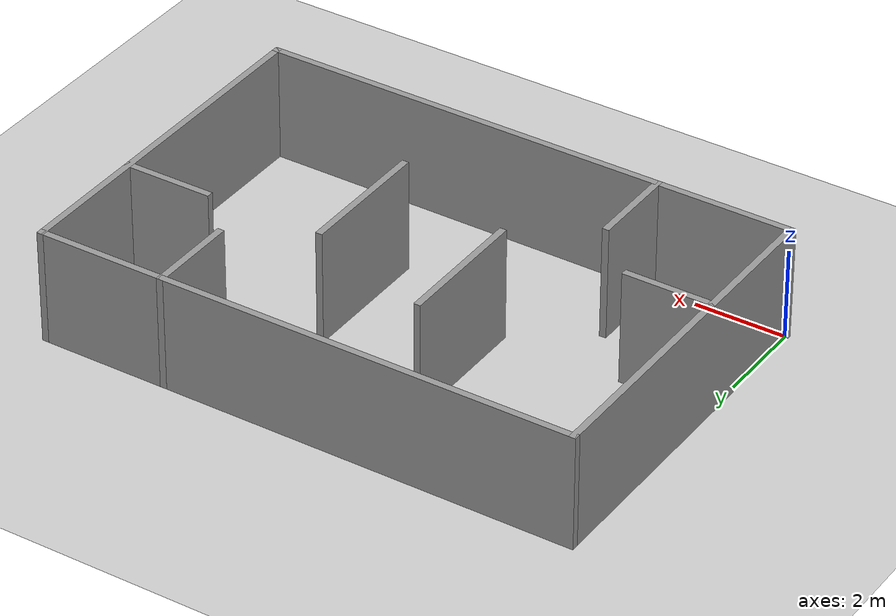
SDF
<sdf version="1.7">
 <world name="default">
  <light name="sun" type="directional">
   <pose>0 0 10 0 -0 0</pose>
   <diffuse>0.8 0.8 0.8 1</diffuse>
   <specular>0.2 0.2 0.2 1</specular>
   <attenuation>
    <range>1000</range>
    <constant>0.9</constant>
    <linear>0.01</linear>
    <quadratic>0.001</quadratic>
   </attenuation>
   <direction>-0.5 0.1 -0.9</direction>
   <spot><inner_angle>0</inner_angle><outer_angle>0</outer_angle><falloff>0</falloff></spot>
  </light>
  <model name="ground_plane">
   <static>1</static>
   <link name="link">
    <collision name="collision">
     <geometry><plane><normal>0 0 1</normal><size>100 100</size></plane></geometry>
     <surface>
      <contact><collide_bitmask>65535</collide_bitmask></contact>
      <friction><ode><mu>100</mu><mu2>50</mu2></ode></friction>
     </surface>
    </collision>
    <visual name="visual">
     <cast_shadows>0</cast_shadows>
     <geometry><plane><normal>0 0 1</normal><size>100 100</size></plane></geometry>
     <material>
      <script><uri>file://media/materials/scripts/gazebo.material</uri><name>Gazebo/Grey</name></script>
     </material>
    </visual>
   </link>
  </model>
  <gravity>0 0 -9.8</gravity>
  <magnetic_field>6e-06 2.3e-05 -4.2e-05</magnetic_field>
  <atmosphere type="adiabatic"/>
  <physics type="ode">
   <max_step_size>0.001</max_step_size>
   <real_time_factor>1</real_time_factor>
   <real_time_update_rate>1000</real_time_update_rate>
  </physics>
  <scene><ambient>0.4 0.4 0.4 1</ambient><background>0.7 0.7 0.7 1</background><shadows>1</shadows></scene>
  <spherical_coordinates>
   <surface_model>EARTH_WGS84</surface_model>
   <latitude_deg>0</latitude_deg>
   <longitude_deg>0</longitude_deg>
   <elevation>0</elevation>
   <heading_deg>0</heading_deg>
  </spherical_coordinates>
  <model name="121">
   <pose>5.925 3.925 0 0 -0 0</pose>
   <link name="Wall_11">
    <collision name="Wall_11_Collision">
     <geometry><box><size>12 0.15 2.5</size></box></geometry>
     <pose>0 0 1.25 0 -0 0</pose>
    </collision>
    <visual name="Wall_11_Visual">
     <pose>0 0 1.25 0 -0 0</pose>
     <geometry><box><size>12 0.15 2.5</size></box></geometry>
     <material>
      <script><uri>file://media/materials/scripts/gazebo.material</uri><name>Gazebo/Grey</name></script>
      <ambient>1 1 1 1</ambient>
     </material>
     <meta><layer>0</layer></meta>
    </visual>
    <pose>-0 3.925 0 0 -0 3.14159</pose>
   </link>
   <link name="Wall_12">
    <collision name="Wall_12_Collision">
     <geometry><box><size>8 0.15 2.5</size></box></geometry>
     <pose>0 0 1.25 0 -0 0</pose>
    </collision>
    <visual name="Wall_12_Visual">
     <pose>0 0 1.25 0 -0 0</pose>
     <geometry><box><size>8 0.15 2.5</size></box></geometry>
     <material>
      <script><uri>file://media/materials/scripts/gazebo.material</uri><name>Gazebo/Grey</name></script>
      <ambient>1 1 1 1</ambient>
     </material>
     <meta><layer>0</layer></meta>
    </visual>
    <pose>-5.925 0 0 0 -0 -1.5708</pose>
   </link>
   <link name="Wall_14">
    <collision name="Wall_14_Collision">
     <geometry><box><size>2 0.15 2.5</size></box></geometry>
     <pose>0 0 1.25 0 -0 0</pose>
    </collision>
    <visual name="Wall_14_Visual">
     <pose>0 0 1.25 0 -0 0</pose>
     <geometry><box><size>2 0.15 2.5</size></box></geometry>
     <material>
      <script><uri>file://media/materials/scripts/gazebo.material</uri><name>Gazebo/Grey</name></script>
      <ambient>1 1 1 1</ambient>
     </material>
     <meta><layer>0</layer></meta>
    </visual>
    <pose>-2.98 -3 0 0 -0 1.5708</pose>
   </link>
   <link name="Wall_16">
    <collision name="Wall_16_Collision">
     <geometry><box><size>2 0.15 2.5</size></box></geometry>
     <pose>0 0 1.25 0 -0 0</pose>
    </collision>
    <visual name="Wall_16_Visual">
     <pose>0 0 1.25 0 -0 0</pose>
     <geometry><box><size>2 0.15 2.5</size></box></geometry>
     <material>
      <script><uri>file://media/materials/scripts/gazebo.material</uri><name>Gazebo/Grey</name></script>
      <ambient>1 1 1 1</ambient>
     </material>
     <meta><layer>0</layer></meta>
    </visual>
    <pose>-5 -0.98 0 0 -0 0</pose>
   </link>
   <link name="Wall_18">
    <collision name="Wall_18_Collision">
     <geometry><box><size>2 0.15 2.5</size></box></geometry>
     <pose>0 0 1.25 0 -0 0</pose>
    </collision>
    <visual name="Wall_18_Visual">
     <pose>0 0 1.25 0 -0 0</pose>
     <geometry><box><size>2 0.15 2.5</size></box></geometry>
     <material>
      <script><uri>file://media/materials/scripts/gazebo.material</uri><name>Gazebo/Grey</name></script>
      <ambient>1 1 1 1</ambient>
     </material>
     <meta><layer>0</layer></meta>
    </visual>
    <pose>5 1.13 0 0 -0 0</pose>
   </link>
   <link name="Wall_20">
    <collision name="Wall_20_Collision">
     <geometry><box><size>2 0.15 2.5</size></box></geometry>
     <pose>0 0 1.25 0 -0 0</pose>
    </collision>
    <visual name="Wall_20_Visual">
     <pose>0 0 1.25 0 -0 0</pose>
     <geometry><box><size>2 0.15 2.5</size></box></geometry>
     <material>
      <script><uri>file://media/materials/scripts/gazebo.material</uri><name>Gazebo/Grey</name></script>
      <ambient>1 1 1 1</ambient>
     </material>
     <meta><layer>0</layer></meta>
    </visual>
    <pose>3.13 3 0 0 -0 -1.5708</pose>
   </link>
   <link name="Wall_22">
    <collision name="Wall_22_Collision">
     <geometry><box><size>3 0.15 2.5</size></box></geometry>
     <pose>0 0 1.25 0 -0 0</pose>
    </collision>
    <visual name="Wall_22_Visual">
     <pose>0 0 1.25 0 -0 0</pose>
     <geometry><box><size>3 0.15 2.5</size></box></geometry>
     <material>
      <script><uri>file://media/materials/scripts/gazebo.material</uri><name>Gazebo/Grey</name></script>
      <ambient>1 1 1 1</ambient>
     </material>
     <meta><layer>0</layer></meta>
    </visual>
    <pose>-1.35 0.55 0 0 -0 1.5708</pose>
   </link>
   <link name="Wall_24">
    <collision name="Wall_24_Collision">
     <geometry><box><size>3 0.15 2.5</size></box></geometry>
     <pose>0 0 1.25 0 -0 0</pose>
    </collision>
    <visual name="Wall_24_Visual">
     <pose>0 0 1.25 0 -0 0</pose>
     <geometry><box><size>3 0.15 2.5</size></box></geometry>
     <material>
      <script><uri>file://media/materials/scripts/gazebo.material</uri><name>Gazebo/Grey</name></script>
      <ambient>1 1 1 1</ambient>
     </material>
     <meta><layer>0</layer></meta>
    </visual>
    <pose>1.5 -0.4 0 0 -0 -1.5708</pose>
   </link>
   <link name="Wall_7">
    <collision name="Wall_7_Collision">
     <geometry><box><size>12 0.15 2.5</size></box></geometry>
     <pose>0 0 1.25 0 -0 0</pose>
    </collision>
    <visual name="Wall_7_Visual">
     <pose>0 0 1.25 0 -0 0</pose>
     <geometry><box><size>12 0.15 2.5</size></box></geometry>
     <material>
      <script><uri>file://media/materials/scripts/gazebo.material</uri><name>Gazebo/Grey</name></script>
      <ambient>1 1 1 1</ambient>
     </material>
     <meta><layer>0</layer></meta>
    </visual>
    <pose>-0 -3.925 0 0 -0 0</pose>
   </link>
   <link name="Wall_9">
    <collision name="Wall_9_Collision">
     <geometry><box><size>8 0.15 2.5</size></box></geometry>
     <pose>0 0 1.25 0 -0 0</pose>
    </collision>
    <visual name="Wall_9_Visual">
     <pose>0 0 1.25 0 -0 0</pose>
     <geometry><box><size>8 0.15 2.5</size></box></geometry>
     <material>
      <script><uri>file://media/materials/scripts/gazebo.material</uri><name>Gazebo/Grey</name></script>
      <ambient>1 1 1 1</ambient>
     </material>
     <meta><layer>0</layer></meta>
    </visual>
    <pose>5.925 0 0 0 -0 1.5708</pose>
   </link>
   <static>1</static>
  </model>
 </world>
</sdf>
